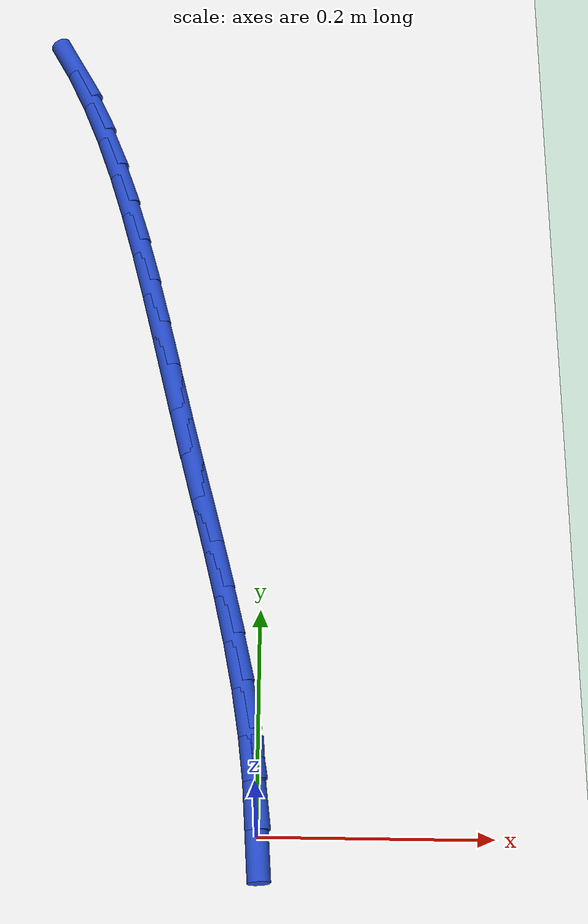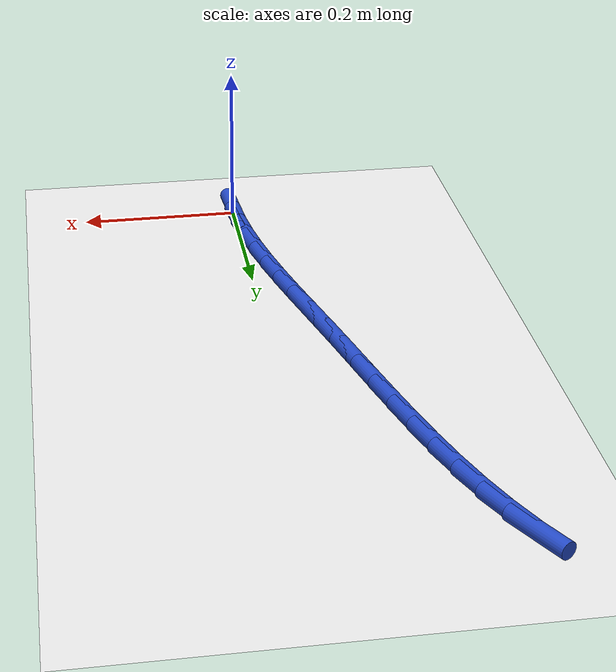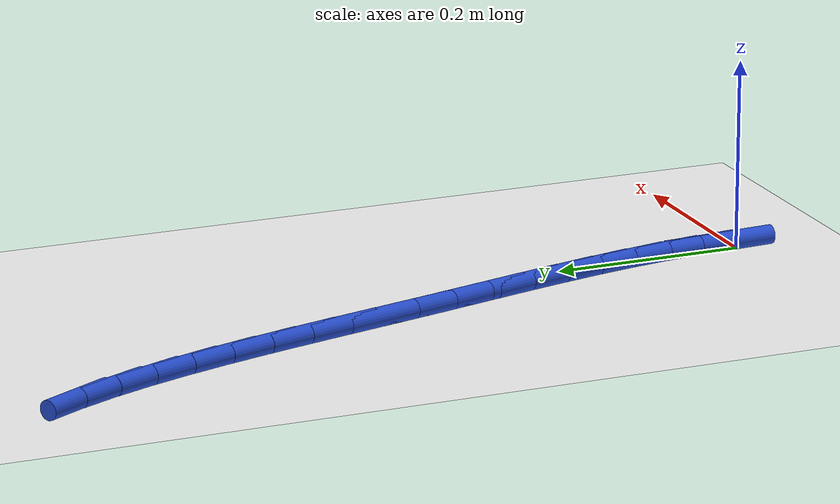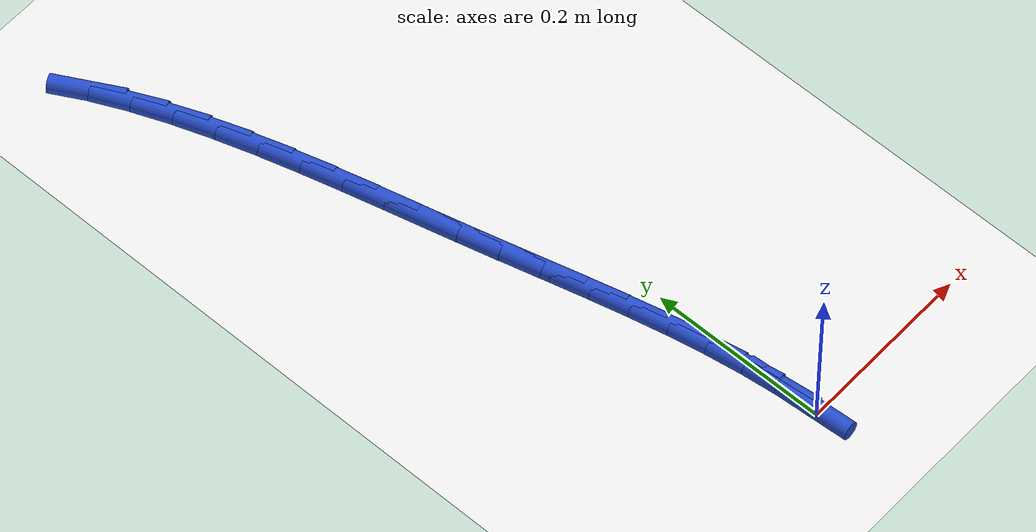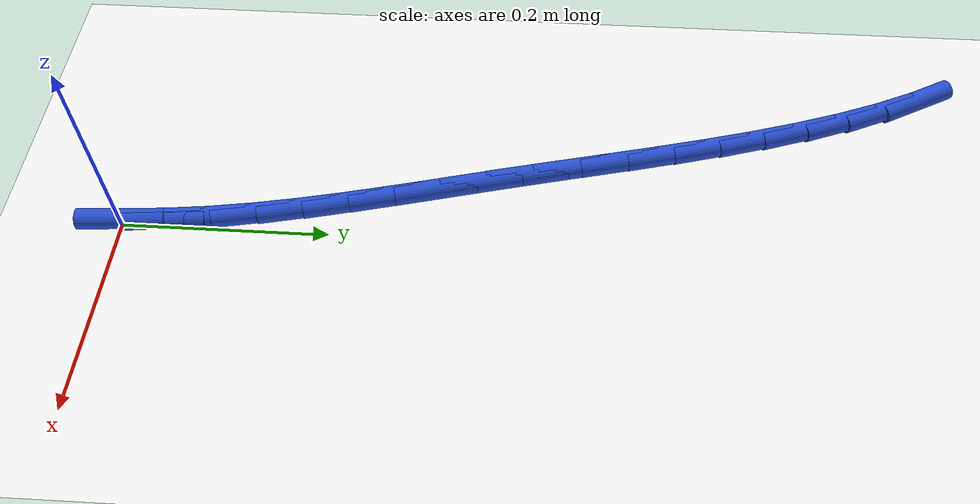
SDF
<sdf version="1.6">
 <world name="default">
  <model name="ground_plane">
   <static>1</static>
   <link name="link">
    <collision name="collision">
     <geometry><plane><normal>0 0 1</normal><size>100 100</size></plane></geometry>
     <surface><friction><ode><mu>100</mu><mu2>50</mu2></ode></friction></surface>
    </collision>
    <visual name="visual">
     <cast_shadows>0</cast_shadows>
     <geometry><plane><normal>0 0 1</normal><size>100 100</size></plane></geometry>
     <material>
      <script><uri>file://media/materials/scripts/gazebo.material</uri><name>Gazebo/WhiteGlow</name></script>
     </material>
    </visual>
   </link>
  </model>
  <model name="line">
   <link name="link_0">
    <pose>-1.3877787807814457e-17 -4.163336342344337e-17 0.01 0 1.57 -1.5065889744394763</pose>
    <collision name="collision">
     <geometry><cylinder><radius>0.01</radius><length>0.08</length></cylinder></geometry>
    </collision>
    <visual name="visual">
     <material>
      <script><name>Gazebo/Blue</name><uri>file://media/materials/scripts/gazebo.material</uri></script>
     </material>
     <geometry><cylinder><radius>0.01</radius><length>0.08</length></cylinder></geometry>
    </visual>
   </link>
   <link name="link_1">
    <pose>-0.002736123242575554 0.04255528599908992 0.01 0 1.57 -1.4557629002769725</pose>
    <collision name="collision">
     <geometry><cylinder><radius>0.01</radius><length>0.08</length></cylinder></geometry>
    </collision>
    <visual name="visual">
     <material>
      <script><name>Gazebo/Blue</name><uri>file://media/materials/scripts/gazebo.material</uri></script>
     </material>
     <geometry><cylinder><radius>0.01</radius><length>0.08</length></cylinder></geometry>
    </visual>
   </link>
   <link name="link_2">
    <pose>-0.007618650630001034 0.08481232544572831 0.01 0 1.57 -1.4123592329329906</pose>
    <collision name="collision">
     <geometry><cylinder><radius>0.01</radius><length>0.08</length></cylinder></geometry>
    </collision>
    <visual name="visual">
     <material>
      <script><name>Gazebo/Blue</name><uri>file://media/materials/scripts/gazebo.material</uri></script>
     </material>
     <geometry><cylinder><radius>0.01</radius><length>0.08</length></cylinder></geometry>
    </visual>
   </link>
   <link name="link_3">
    <pose>-0.014345441209843435 0.126913641478169 0.01 0 1.57 -1.3768004767027064</pose>
    <collision name="collision">
     <geometry><cylinder><radius>0.01</radius><length>0.08</length></cylinder></geometry>
    </collision>
    <visual name="visual">
     <material>
      <script><name>Gazebo/Blue</name><uri>file://media/materials/scripts/gazebo.material</uri></script>
     </material>
     <geometry><cylinder><radius>0.01</radius><length>0.08</length></cylinder></geometry>
    </visual>
   </link>
   <link name="link_4">
    <pose>-0.022614354029669693 0.16900175723466565 0.01 0 1.57 -1.3492571074894464</pose>
    <collision name="collision">
     <geometry><cylinder><radius>0.01</radius><length>0.08</length></cylinder></geometry>
    </collision>
    <visual name="visual">
     <material>
      <script><name>Gazebo/Blue</name><uri>file://media/materials/scripts/gazebo.material</uri></script>
     </material>
     <geometry><cylinder><radius>0.01</radius><length>0.08</length></cylinder></geometry>
    </visual>
   </link>
   <link name="link_5">
    <pose>-0.032123248137046805 0.21121919585347218 0.01 0 1.57 -1.3297108356358962</pose>
    <collision name="collision">
     <geometry><cylinder><radius>0.01</radius><length>0.08</length></cylinder></geometry>
    </collision>
    <visual name="visual">
     <material>
      <script><name>Gazebo/Blue</name><uri>file://media/materials/scripts/gazebo.material</uri></script>
     </material>
     <geometry><cylinder><radius>0.01</radius><length>0.08</length></cylinder></geometry>
    </visual>
   </link>
   <link name="link_6">
    <pose>-0.04256998257954175 0.2537084804728424 0.01 0 1.57 -1.3180121047432611</pose>
    <collision name="collision">
     <geometry><cylinder><radius>0.01</radius><length>0.08</length></cylinder></geometry>
    </collision>
    <visual name="visual">
     <material>
      <script><name>Gazebo/Blue</name><uri>file://media/materials/scripts/gazebo.material</uri></script>
     </material>
     <geometry><cylinder><radius>0.01</radius><length>0.08</length></cylinder></geometry>
    </visual>
   </link>
   <link name="link_7">
    <pose>-0.05365241640472146 0.29661213423102994 0.01 0 1.57 -1.3139244283050873</pose>
    <collision name="collision">
     <geometry><cylinder><radius>0.01</radius><length>0.08</length></cylinder></geometry>
    </collision>
    <visual name="visual">
     <material>
      <script><name>Gazebo/Blue</name><uri>file://media/materials/scripts/gazebo.material</uri></script>
     </material>
     <geometry><cylinder><radius>0.01</radius><length>0.08</length></cylinder></geometry>
    </visual>
   </link>
   <link name="link_8">
    <pose>-0.06506840866015291 0.34007268026628873 0.01 0 1.57 -1.3171533033337746</pose>
    <collision name="collision">
     <geometry><cylinder><radius>0.01</radius><length>0.08</length></cylinder></geometry>
    </collision>
    <visual name="visual">
     <material>
      <script><name>Gazebo/Blue</name><uri>file://media/materials/scripts/gazebo.material</uri></script>
     </material>
     <geometry><cylinder><radius>0.01</radius><length>0.08</length></cylinder></geometry>
    </visual>
   </link>
   <link name="link_9">
    <pose>-0.07651582229259807 0.3842326383417553 0.01 0 1.57 -1.324746816008671</pose>
    <collision name="collision">
     <geometry><cylinder><radius>0.01</radius><length>0.08</length></cylinder></geometry>
    </collision>
    <visual name="visual">
     <material>
      <script><name>Gazebo/Blue</name><uri>file://media/materials/scripts/gazebo.material</uri></script>
     </material>
     <geometry><cylinder><radius>0.01</radius><length>0.08</length></cylinder></geometry>
    </visual>
   </link>
   <link name="link_10">
    <pose>-0.08779519151263991 0.4291456566554979 0.01 0 1.57 -1.3272268286062185</pose>
    <collision name="collision">
     <geometry><cylinder><radius>0.01</radius><length>0.08</length></cylinder></geometry>
    </collision>
    <visual name="visual">
     <material>
      <script><name>Gazebo/Blue</name><uri>file://media/materials/scripts/gazebo.material</uri></script>
     </material>
     <geometry><cylinder><radius>0.01</radius><length>0.08</length></cylinder></geometry>
    </visual>
   </link>
   <link name="link_11">
    <pose>-0.0990770961195179 0.47454507439811383 0.01 0 1.57 -1.3226873999227522</pose>
    <collision name="collision">
     <geometry><cylinder><radius>0.01</radius><length>0.08</length></cylinder></geometry>
    </collision>
    <visual name="visual">
     <material>
      <script><name>Gazebo/Blue</name><uri>file://media/materials/scripts/gazebo.material</uri></script>
     </material>
     <geometry><cylinder><radius>0.01</radius><length>0.08</length></cylinder></geometry>
    </visual>
   </link>
   <link name="link_12">
    <pose>-0.11061545497741966 0.5200920930182689 0.01 0 1.57 -1.3111442073078095</pose>
    <collision name="collision">
     <geometry><cylinder><radius>0.01</radius><length>0.08</length></cylinder></geometry>
    </collision>
    <visual name="visual">
     <material>
      <script><name>Gazebo/Blue</name><uri>file://media/materials/scripts/gazebo.material</uri></script>
     </material>
     <geometry><cylinder><radius>0.01</radius><length>0.08</length></cylinder></geometry>
    </visual>
   </link>
   <link name="link_13">
    <pose>-0.12266418695053276 0.565447913964629 0.01 0 1.57 -1.292380234581895</pose>
    <collision name="collision">
     <geometry><cylinder><radius>0.01</radius><length>0.08</length></cylinder></geometry>
    </collision>
    <visual name="visual">
     <material>
      <script><name>Gazebo/Blue</name><uri>file://media/materials/scripts/gazebo.material</uri></script>
     </material>
     <geometry><cylinder><radius>0.01</radius><length>0.08</length></cylinder></geometry>
    </visual>
   </link>
   <link name="link_14">
    <pose>-0.13547721090304488 0.6102737386858604 0.01 0 1.57 -1.2659507250403768</pose>
    <collision name="collision">
     <geometry><cylinder><radius>0.01</radius><length>0.08</length></cylinder></geometry>
    </collision>
    <visual name="visual">
     <material>
      <script><name>Gazebo/Blue</name><uri>file://media/materials/scripts/gazebo.material</uri></script>
     </material>
     <geometry><cylinder><radius>0.01</radius><length>0.08</length></cylinder></geometry>
    </visual>
   </link>
   <link name="link_15">
    <pose>-0.1493084456991436 0.6542307686306286 0.01 0 1.57 -1.2311849095356386</pose>
    <collision name="collision">
     <geometry><cylinder><radius>0.01</radius><length>0.08</length></cylinder></geometry>
    </collision>
    <visual name="visual">
     <material>
      <script><name>Gazebo/Blue</name><uri>file://media/materials/scripts/gazebo.material</uri></script>
     </material>
     <geometry><cylinder><radius>0.01</radius><length>0.08</length></cylinder></geometry>
    </visual>
   </link>
   <link name="link_16">
    <pose>-0.16441181020301654 0.6969802052476001 0.01 0 1.57 -1.1871931929078012</pose>
    <collision name="collision">
     <geometry><cylinder><radius>0.01</radius><length>0.08</length></cylinder></geometry>
    </collision>
    <visual name="visual">
     <material>
      <script><name>Gazebo/Blue</name><uri>file://media/materials/scripts/gazebo.material</uri></script>
     </material>
     <geometry><cylinder><radius>0.01</radius><length>0.08</length></cylinder></geometry>
    </visual>
   </link>
   <link name="link_17">
    <pose>-0.1810412232788513 0.7381832499854408 0.01 0 1.57 -1.132894905399777</pose>
    <collision name="collision">
     <geometry><cylinder><radius>0.01</radius><length>0.08</length></cylinder></geometry>
    </collision>
    <visual name="visual">
     <material>
      <script><name>Gazebo/Blue</name><uri>file://media/materials/scripts/gazebo.material</uri></script>
     </material>
     <geometry><cylinder><radius>0.01</radius><length>0.08</length></cylinder></geometry>
    </visual>
   </link>
   <link name="link_18">
    <pose>-0.19945060379083548 0.7775011042928163 0.01 0 1.57 -1.067091657716847</pose>
    <collision name="collision">
     <geometry><cylinder><radius>0.01</radius><length>0.08</length></cylinder></geometry>
    </collision>
    <visual name="visual">
     <material>
      <script><name>Gazebo/Blue</name><uri>file://media/materials/scripts/gazebo.material</uri></script>
     </material>
     <geometry><cylinder><radius>0.01</radius><length>0.08</length></cylinder></geometry>
    </visual>
   </link>
   <link name="link_161">
    <pose>-0.0027979640008102165 0.04250612159357152 0.01 0 1.57 -1.5050661861511176</pose>
    <collision name="collision">
     <geometry><cylinder><radius>0.01</radius><length>0.08</length></cylinder></geometry>
    </collision>
    <visual name="visual">
     <material>
      <script><name>Gazebo/Blue</name><uri>file://media/materials/scripts/gazebo.material</uri></script>
     </material>
     <geometry><cylinder><radius>0.01</radius><length>0.08</length></cylinder></geometry>
    </visual>
   </link>
  </model>
 </world>
</sdf>
